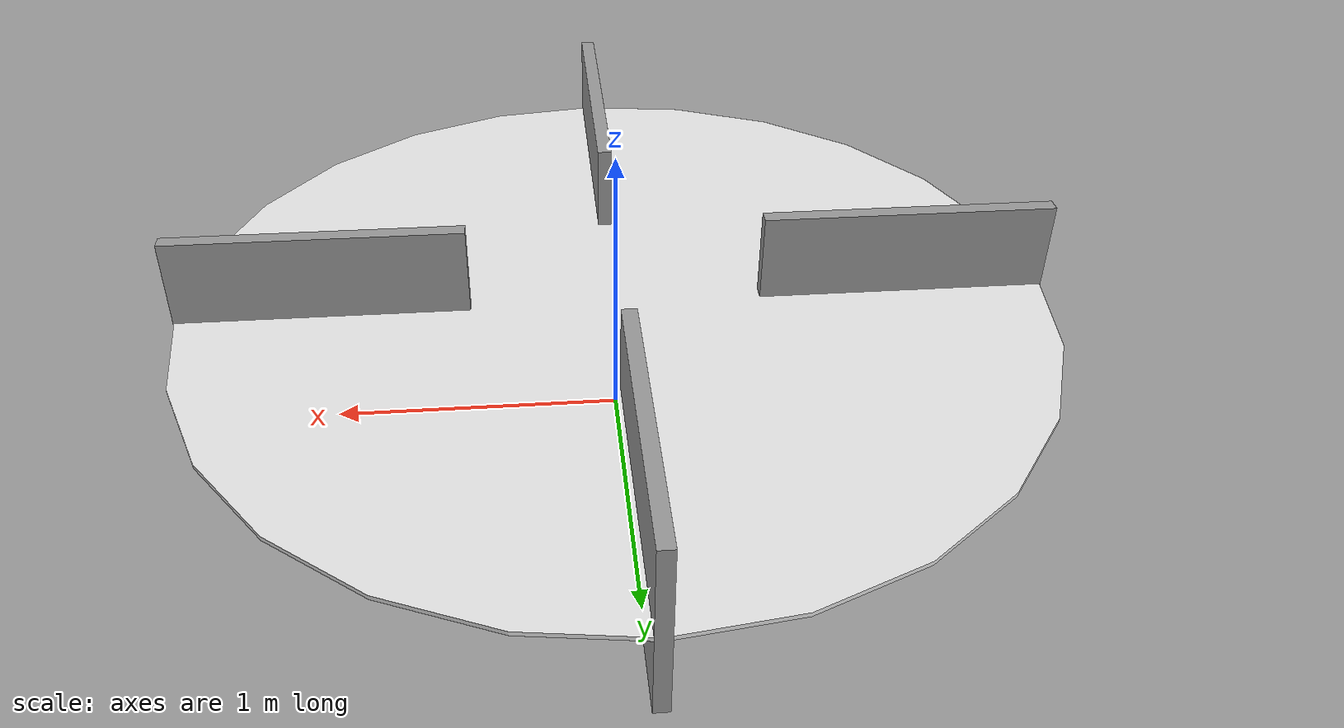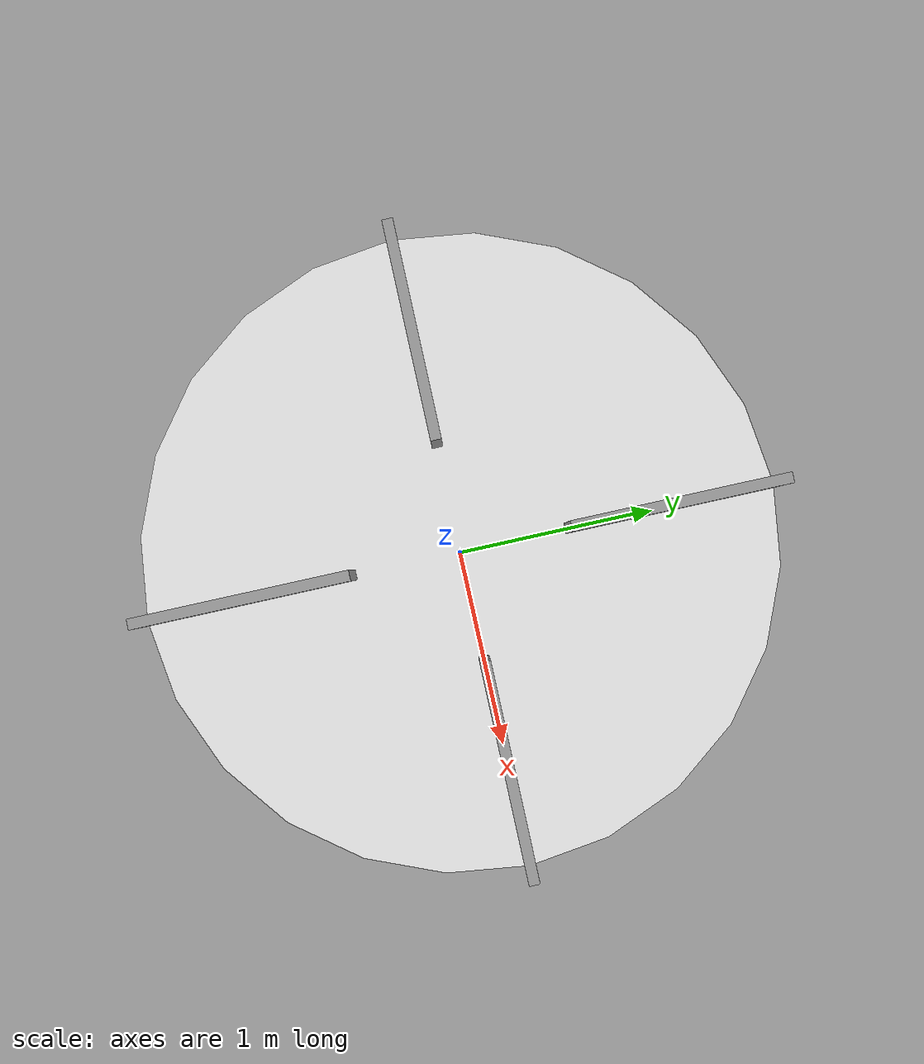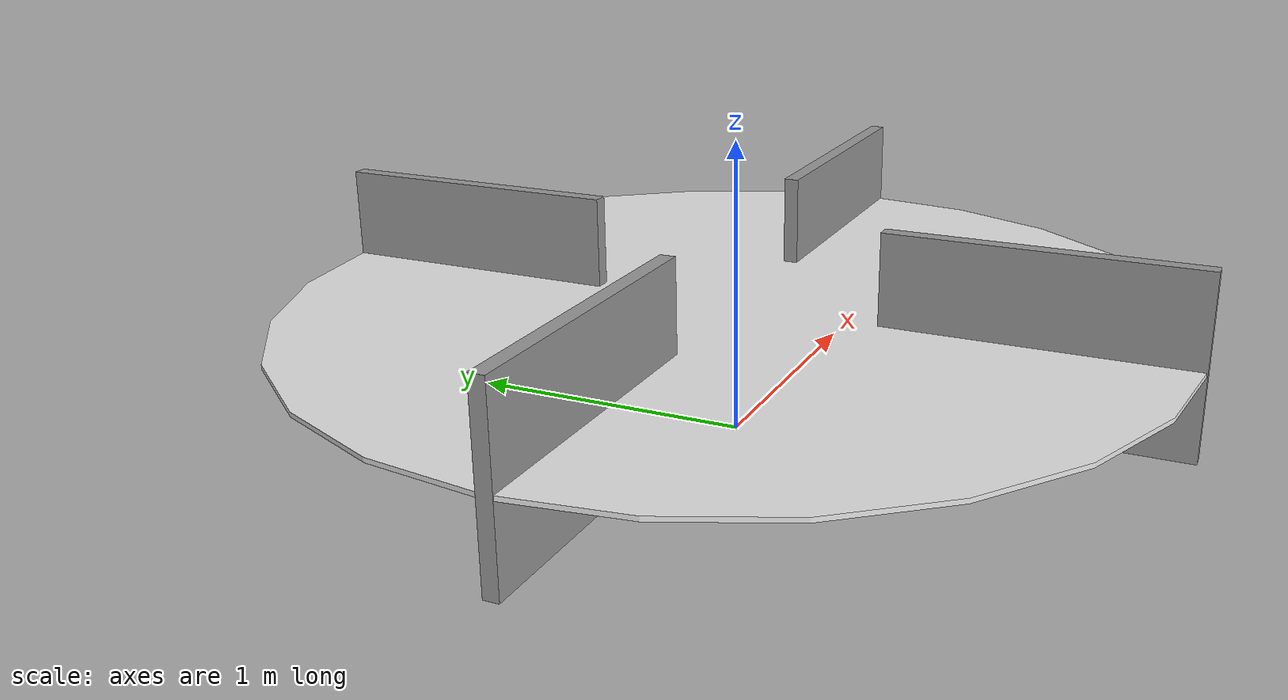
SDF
<?xml version="1.0"?>
<sdf version="1.7">

  <model name="table_top">
    <link name="table_top_link">
      <inertial>
        <mass>18.70</mass>
        <pose>0.0 0.0 0.445 0 0 0</pose>
        <inertia>
            <ixx>0.619</ixx>
            <ixy>0</ixy>
            <ixz>0</ixz>
            <iyy>0.374</iyy>
            <iyz>0</iyz>
            <izz>0.99</izz>
        </inertia>
      </inertial>
      <visual name="bottom">
        <pose>0.0 0.0 0.445 0 0 0</pose>
        <geometry>
          <cylinder>
            <radius>1.5</radius> <!-- Set the radius of the table -->
            <length>0.015</length> <!-- Set the thickness of the table -->
          </cylinder>
        </geometry>
        <material>
          <diffuse>0.9 0.9 0.9 1.0</diffuse>
        </material>
      </visual>
      <collision name="bottom">
        <pose>0.0 0.0 0.445 0 0 0</pose>
        <geometry>
          <cylinder>
            <radius>1.5</radius> <!-- Match the radius of the table -->
            <length>0.015</length> <!-- Match the thickness of the table -->
          </cylinder>
        </geometry>
        <drake:proximity_properties>
          <drake:compliant_hydroelastic/>
          <drake:mesh_resolution_hint>0.01</drake:mesh_resolution_hint>
          <drake:hydroelastic_modulus>1.0e8</drake:hydroelastic_modulus>
        </drake:proximity_properties>
      </collision>

      <!-- Wall along the positive X-axis -->
      <visual name="wall_x_positive">
        <pose>1.0 0 0.46 0 0 0</pose>
        <geometry>
          <box>
            <size>1.0 0.05 0.6</size> <!-- Extends two-thirds into the table -->
          </box>
        </geometry>
        <material>
          <diffuse>0.6 0.6 0.6 1.0</diffuse>
        </material>
      </visual>
      <collision name="wall_x_positive">
        <pose>1.0 0 0.46 0 0 0</pose>
        <geometry>
          <box>
            <size>1.0 0.05 0.6</size>
          </box>
        </geometry>
      </collision>

      <!-- Wall along the negative X-axis -->
      <visual name="wall_x_negative">
        <pose>-1.0 0 0.46 0 0 0</pose>
        <geometry>
          <box>
            <size>1.0 0.05 0.6</size> <!-- Extends two-thirds into the table -->
          </box>
        </geometry>
        <material>
          <diffuse>0.6 0.6 0.6 1.0</diffuse>
        </material>
      </visual>
      <collision name="wall_x_negative">
        <pose>-1.0 0 0.46 0 0 0</pose>
        <geometry>
          <box>
            <size>1.0 0.05 0.6</size>
          </box>
        </geometry>
      </collision>

      <!-- Wall along the positive Y-axis -->
      <visual name="wall_y_positive">
        <pose>0 1.0 0.46 0 0 1.5708</pose>
        <geometry>
          <box>
            <size>1.0 0.05 0.6</size> <!-- Extends two-thirds into the table -->
          </box>
        </geometry>
        <material>
          <diffuse>0.6 0.6 0.6 1.0</diffuse>
        </material>
      </visual>
      <collision name="wall_y_positive">
        <pose>0 1.0 0.46 0 0 1.5708</pose>
        <geometry>
          <box>
            <size>1.0 0.05 0.6</size>
          </box>
        </geometry>
      </collision>

      <!-- Wall along the negative Y-axis -->
      <visual name="wall_y_negative">
        <pose>0 -1.0 0.46 0 0 1.5708</pose>
        <geometry>
          <box>
            <size>1.0 0.05 0.6</size> <!-- Extends two-thirds into the table -->
          </box>
        </geometry>
        <material>
          <diffuse>0.6 0.6 0.6 1.0</diffuse>
        </material>
      </visual>
      <collision name="wall_y_negative">
        <pose>0 -1.0 0.46 0 0 1.5708</pose>
        <geometry>
          <box>
            <size>1.0 0.05 0.6</size>
          </box>
        </geometry>
      </collision>
    </link>
    <frame name="table_top_center">
      <pose relative_to="table_top_link">0 0 0.47 0 0 0</pose>
    </frame>
  </model>

</sdf>
